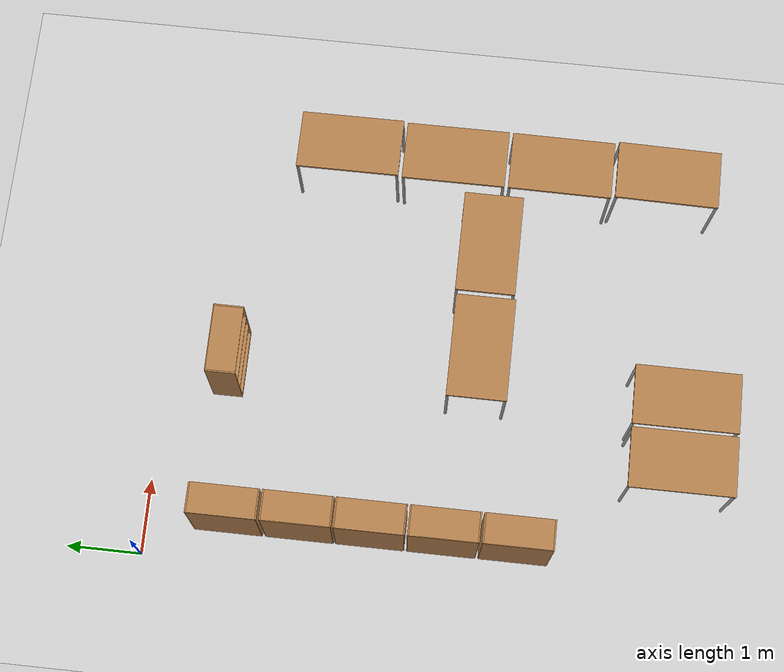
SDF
<sdf version="1.6">
 <world name="default">
  <model name="ground_plane">
   <static>1</static>
   <link name="link">
    <collision name="collision">
     <geometry><plane><normal>0 0 1</normal><size>100 100</size></plane></geometry>
     <surface><friction><ode><mu>100</mu><mu2>50</mu2></ode></friction></surface>
    </collision>
    <visual name="visual">
     <cast_shadows>0</cast_shadows>
     <geometry><plane><normal>0 0 1</normal><size>100 100</size></plane></geometry>
     <material>
      <script><uri>file://media/materials/scripts/gazebo.material</uri><name>Gazebo/Grey</name></script>
     </material>
    </visual>
   </link>
  </model>
  <model name="table_0_clone_0_clone_clone">
   <static>0</static>
   <link name="link">
    <collision name="surface">
     <pose>0 0 1 0 -0 0</pose>
     <geometry><box><size>1.5 0.8 0.03</size></box></geometry>
     <surface><friction><ode><mu>0.6</mu><mu2>0.6</mu2></ode></friction></surface>
    </collision>
    <visual name="visual1">
     <pose>0 0 1 0 -0 0</pose>
     <geometry><box><size>1.4 0.8 0.04</size></box></geometry>
     <material>
      <script><uri>file://media/materials/scripts/gazebo.material</uri><name>Gazebo/Wood</name></script>
     </material>
    </visual>
    <collision name="front_left_leg">
     <pose>0.68 0.38 0.5 0 -0 0</pose>
     <geometry><cylinder><radius>0.02</radius><length>1</length></cylinder></geometry>
    </collision>
    <visual name="front_left_leg">
     <pose>0.68 0.38 0.5 0 -0 0</pose>
     <geometry><cylinder><radius>0.02</radius><length>1</length></cylinder></geometry>
     <material>
      <script><uri>file://media/materials/scripts/gazebo.material</uri><name>Gazebo/Grey</name></script>
     </material>
    </visual>
    <collision name="front_right_leg">
     <pose>0.68 -0.38 0.5 0 -0 0</pose>
     <geometry><cylinder><radius>0.02</radius><length>1</length></cylinder></geometry>
    </collision>
    <visual name="front_right_leg">
     <pose>0.68 -0.38 0.5 0 -0 0</pose>
     <geometry><cylinder><radius>0.02</radius><length>1</length></cylinder></geometry>
     <material>
      <script><uri>file://media/materials/scripts/gazebo.material</uri><name>Gazebo/Grey</name></script>
     </material>
    </visual>
    <collision name="back_right_leg">
     <pose>-0.68 -0.38 0.5 0 -0 0</pose>
     <geometry><cylinder><radius>0.02</radius><length>1</length></cylinder></geometry>
    </collision>
    <visual name="back_right_leg">
     <pose>-0.68 -0.38 0.5 0 -0 0</pose>
     <geometry><cylinder><radius>0.02</radius><length>1</length></cylinder></geometry>
     <material>
      <script><uri>file://media/materials/scripts/gazebo.material</uri><name>Gazebo/Grey</name></script>
     </material>
    </visual>
    <collision name="back_left_leg">
     <pose>-0.68 0.38 0.5 0 -0 0</pose>
     <geometry><cylinder><radius>0.02</radius><length>1</length></cylinder></geometry>
    </collision>
    <visual name="back_left_leg">
     <pose>-0.68 0.38 0.5 0 -0 0</pose>
     <geometry><cylinder><radius>0.02</radius><length>1</length></cylinder></geometry>
     <material>
      <script><uri>file://media/materials/scripts/gazebo.material</uri><name>Gazebo/Grey</name></script>
     </material>
    </visual>
    <inertial>
     <inertia><ixx>1</ixx><ixy>0</ixy><ixz>0</ixz><iyy>1</iyy><iyz>0</iyz><izz>1</izz></inertia>
     <mass>1</mass>
    </inertial>
   </link>
   <pose>5.70429 -5.08192 -2.3e-05 0 7e-06 -1.57798</pose>
  </model>
  <model name="table_0_clone_0_clone_clone_0">
   <static>0</static>
   <link name="link">
    <collision name="surface">
     <pose>0 0 1 0 -0 0</pose>
     <geometry><box><size>1.5 0.8 0.03</size></box></geometry>
     <surface><friction><ode><mu>0.6</mu><mu2>0.6</mu2></ode></friction></surface>
    </collision>
    <visual name="visual1">
     <pose>0 0 1 0 -0 0</pose>
     <geometry><box><size>1.4 0.8 0.04</size></box></geometry>
     <material>
      <script><uri>file://media/materials/scripts/gazebo.material</uri><name>Gazebo/Wood</name></script>
     </material>
    </visual>
    <collision name="front_left_leg">
     <pose>0.68 0.38 0.5 0 -0 0</pose>
     <geometry><cylinder><radius>0.02</radius><length>1</length></cylinder></geometry>
    </collision>
    <visual name="front_left_leg">
     <pose>0.68 0.38 0.5 0 -0 0</pose>
     <geometry><cylinder><radius>0.02</radius><length>1</length></cylinder></geometry>
     <material>
      <script><uri>file://media/materials/scripts/gazebo.material</uri><name>Gazebo/Grey</name></script>
     </material>
    </visual>
    <collision name="front_right_leg">
     <pose>0.68 -0.38 0.5 0 -0 0</pose>
     <geometry><cylinder><radius>0.02</radius><length>1</length></cylinder></geometry>
    </collision>
    <visual name="front_right_leg">
     <pose>0.68 -0.38 0.5 0 -0 0</pose>
     <geometry><cylinder><radius>0.02</radius><length>1</length></cylinder></geometry>
     <material>
      <script><uri>file://media/materials/scripts/gazebo.material</uri><name>Gazebo/Grey</name></script>
     </material>
    </visual>
    <collision name="back_right_leg">
     <pose>-0.68 -0.38 0.5 0 -0 0</pose>
     <geometry><cylinder><radius>0.02</radius><length>1</length></cylinder></geometry>
    </collision>
    <visual name="back_right_leg">
     <pose>-0.68 -0.38 0.5 0 -0 0</pose>
     <geometry><cylinder><radius>0.02</radius><length>1</length></cylinder></geometry>
     <material>
      <script><uri>file://media/materials/scripts/gazebo.material</uri><name>Gazebo/Grey</name></script>
     </material>
    </visual>
    <collision name="back_left_leg">
     <pose>-0.68 0.38 0.5 0 -0 0</pose>
     <geometry><cylinder><radius>0.02</radius><length>1</length></cylinder></geometry>
    </collision>
    <visual name="back_left_leg">
     <pose>-0.68 0.38 0.5 0 -0 0</pose>
     <geometry><cylinder><radius>0.02</radius><length>1</length></cylinder></geometry>
     <material>
      <script><uri>file://media/materials/scripts/gazebo.material</uri><name>Gazebo/Grey</name></script>
     </material>
    </visual>
    <inertial>
     <inertia><ixx>1</ixx><ixy>0</ixy><ixz>0</ixz><iyy>1</iyy><iyz>0</iyz><izz>1</izz></inertia>
     <mass>1</mass>
    </inertial>
   </link>
   <pose>5.71044 -6.51123 0.0151 -2e-06 0.021572 -1.57798</pose>
  </model>
  <model name="table_0_clone_0_clone_clone_1">
   <static>0</static>
   <link name="link">
    <collision name="surface">
     <pose>0 0 1 0 -0 0</pose>
     <geometry><box><size>1.5 0.8 0.03</size></box></geometry>
     <surface><friction><ode><mu>0.6</mu><mu2>0.6</mu2></ode></friction></surface>
    </collision>
    <visual name="visual1">
     <pose>0 0 1 0 -0 0</pose>
     <geometry><box><size>1.4 0.8 0.04</size></box></geometry>
     <material>
      <script><uri>file://media/materials/scripts/gazebo.material</uri><name>Gazebo/Wood</name></script>
     </material>
    </visual>
    <collision name="front_left_leg">
     <pose>0.68 0.38 0.5 0 -0 0</pose>
     <geometry><cylinder><radius>0.02</radius><length>1</length></cylinder></geometry>
    </collision>
    <visual name="front_left_leg">
     <pose>0.68 0.38 0.5 0 -0 0</pose>
     <geometry><cylinder><radius>0.02</radius><length>1</length></cylinder></geometry>
     <material>
      <script><uri>file://media/materials/scripts/gazebo.material</uri><name>Gazebo/Grey</name></script>
     </material>
    </visual>
    <collision name="front_right_leg">
     <pose>0.68 -0.38 0.5 0 -0 0</pose>
     <geometry><cylinder><radius>0.02</radius><length>1</length></cylinder></geometry>
    </collision>
    <visual name="front_right_leg">
     <pose>0.68 -0.38 0.5 0 -0 0</pose>
     <geometry><cylinder><radius>0.02</radius><length>1</length></cylinder></geometry>
     <material>
      <script><uri>file://media/materials/scripts/gazebo.material</uri><name>Gazebo/Grey</name></script>
     </material>
    </visual>
    <collision name="back_right_leg">
     <pose>-0.68 -0.38 0.5 0 -0 0</pose>
     <geometry><cylinder><radius>0.02</radius><length>1</length></cylinder></geometry>
    </collision>
    <visual name="back_right_leg">
     <pose>-0.68 -0.38 0.5 0 -0 0</pose>
     <geometry><cylinder><radius>0.02</radius><length>1</length></cylinder></geometry>
     <material>
      <script><uri>file://media/materials/scripts/gazebo.material</uri><name>Gazebo/Grey</name></script>
     </material>
    </visual>
    <collision name="back_left_leg">
     <pose>-0.68 0.38 0.5 0 -0 0</pose>
     <geometry><cylinder><radius>0.02</radius><length>1</length></cylinder></geometry>
    </collision>
    <visual name="back_left_leg">
     <pose>-0.68 0.38 0.5 0 -0 0</pose>
     <geometry><cylinder><radius>0.02</radius><length>1</length></cylinder></geometry>
     <material>
      <script><uri>file://media/materials/scripts/gazebo.material</uri><name>Gazebo/Grey</name></script>
     </material>
    </visual>
    <inertial>
     <inertia><ixx>1</ixx><ixy>0</ixy><ixz>0</ixz><iyy>1</iyy><iyz>0</iyz><izz>1</izz></inertia>
     <mass>1</mass>
    </inertial>
   </link>
   <pose>2.60823 -6.96246 -3e-06 0 -4e-06 -1.57084</pose>
  </model>
  <model name="table_0_clone_0_clone_clone_2">
   <static>0</static>
   <link name="link">
    <collision name="surface">
     <pose>0 0 1 0 -0 0</pose>
     <geometry><box><size>1.5 0.8 0.03</size></box></geometry>
     <surface><friction><ode><mu>0.6</mu><mu2>0.6</mu2></ode></friction></surface>
    </collision>
    <visual name="visual1">
     <pose>0 0 1 0 -0 0</pose>
     <geometry><box><size>1.4 0.8 0.04</size></box></geometry>
     <material>
      <script><uri>file://media/materials/scripts/gazebo.material</uri><name>Gazebo/Wood</name></script>
     </material>
    </visual>
    <collision name="front_left_leg">
     <pose>0.68 0.38 0.5 0 -0 0</pose>
     <geometry><cylinder><radius>0.02</radius><length>1</length></cylinder></geometry>
    </collision>
    <visual name="front_left_leg">
     <pose>0.68 0.38 0.5 0 -0 0</pose>
     <geometry><cylinder><radius>0.02</radius><length>1</length></cylinder></geometry>
     <material>
      <script><uri>file://media/materials/scripts/gazebo.material</uri><name>Gazebo/Grey</name></script>
     </material>
    </visual>
    <collision name="front_right_leg">
     <pose>0.68 -0.38 0.5 0 -0 0</pose>
     <geometry><cylinder><radius>0.02</radius><length>1</length></cylinder></geometry>
    </collision>
    <visual name="front_right_leg">
     <pose>0.68 -0.38 0.5 0 -0 0</pose>
     <geometry><cylinder><radius>0.02</radius><length>1</length></cylinder></geometry>
     <material>
      <script><uri>file://media/materials/scripts/gazebo.material</uri><name>Gazebo/Grey</name></script>
     </material>
    </visual>
    <collision name="back_right_leg">
     <pose>-0.68 -0.38 0.5 0 -0 0</pose>
     <geometry><cylinder><radius>0.02</radius><length>1</length></cylinder></geometry>
    </collision>
    <visual name="back_right_leg">
     <pose>-0.68 -0.38 0.5 0 -0 0</pose>
     <geometry><cylinder><radius>0.02</radius><length>1</length></cylinder></geometry>
     <material>
      <script><uri>file://media/materials/scripts/gazebo.material</uri><name>Gazebo/Grey</name></script>
     </material>
    </visual>
    <collision name="back_left_leg">
     <pose>-0.68 0.38 0.5 0 -0 0</pose>
     <geometry><cylinder><radius>0.02</radius><length>1</length></cylinder></geometry>
    </collision>
    <visual name="back_left_leg">
     <pose>-0.68 0.38 0.5 0 -0 0</pose>
     <geometry><cylinder><radius>0.02</radius><length>1</length></cylinder></geometry>
     <material>
      <script><uri>file://media/materials/scripts/gazebo.material</uri><name>Gazebo/Grey</name></script>
     </material>
    </visual>
    <inertial>
     <inertia><ixx>1</ixx><ixy>0</ixy><ixz>0</ixz><iyy>1</iyy><iyz>0</iyz><izz>1</izz></inertia>
     <mass>1</mass>
    </inertial>
   </link>
   <pose>1.76358 -6.96121 -9e-06 0 0 -1.57001</pose>
  </model>
  <model name="bookshelf">
   <static>1</static>
   <link name="link">
    <inertial><mass>1</mass></inertial>
    <collision name="back">
     <pose>0 0.005 0.6 0 -0 0</pose>
     <geometry><box><size>0.9 0.01 1.2</size></box></geometry>
    </collision>
    <visual name="visual1">
     <pose>0 0.005 0.6 0 -0 0</pose>
     <geometry><box><size>0.9 0.01 1.2</size></box></geometry>
     <material>
      <script><uri>file://media/materials/scripts/gazebo.material</uri><name>Gazebo/Wood</name></script>
     </material>
    </visual>
    <collision name="left_side">
     <pose>0.45 -0.195 0.6 0 -0 0</pose>
     <geometry><box><size>0.02 0.4 1.2</size></box></geometry>
    </collision>
    <visual name="visual2">
     <pose>0.45 -0.195 0.6 0 -0 0</pose>
     <geometry><box><size>0.02 0.4 1.2</size></box></geometry>
     <material>
      <script><uri>file://media/materials/scripts/gazebo.material</uri><name>Gazebo/Wood</name></script>
     </material>
    </visual>
    <collision name="right_side">
     <pose>-0.45 -0.195 0.6 0 -0 0</pose>
     <geometry><box><size>0.02 0.4 1.2</size></box></geometry>
    </collision>
    <visual name="visual3">
     <pose>-0.45 -0.195 0.6 0 -0 0</pose>
     <geometry><box><size>0.02 0.4 1.2</size></box></geometry>
     <material>
      <script><uri>file://media/materials/scripts/gazebo.material</uri><name>Gazebo/Wood</name></script>
     </material>
    </visual>
    <collision name="bottom">
     <pose>0 -0.195 0.03 0 -0 0</pose>
     <geometry><box><size>0.88 0.4 0.06</size></box></geometry>
    </collision>
    <visual name="visual4">
     <pose>0 -0.195 0.03 0 -0 0</pose>
     <geometry><box><size>0.88 0.4 0.06</size></box></geometry>
     <material>
      <script><uri>file://media/materials/scripts/gazebo.material</uri><name>Gazebo/Wood</name></script>
     </material>
    </visual>
    <collision name="top">
     <pose>0 -0.195 1.19 0 -0 0</pose>
     <geometry><box><size>0.88 0.4 0.02</size></box></geometry>
    </collision>
    <visual name="visual5">
     <pose>0 -0.195 1.19 0 -0 0</pose>
     <geometry><box><size>0.88 0.4 0.02</size></box></geometry>
     <material>
      <script><uri>file://media/materials/scripts/gazebo.material</uri><name>Gazebo/Wood</name></script>
     </material>
    </visual>
    <collision name="low_shelf">
     <pose>0 -0.195 0.43 0 -0 0</pose>
     <geometry><box><size>0.88 0.4 0.02</size></box></geometry>
    </collision>
    <visual name="visual6">
     <pose>0 -0.195 0.43 0 -0 0</pose>
     <geometry><box><size>0.88 0.4 0.02</size></box></geometry>
     <material>
      <script><uri>file://media/materials/scripts/gazebo.material</uri><name>Gazebo/Wood</name></script>
     </material>
    </visual>
    <collision name="high_shelf">
     <pose>0 -0.195 0.8 0 -0 0</pose>
     <geometry><box><size>0.88 0.4 0.02</size></box></geometry>
    </collision>
    <visual name="visual7">
     <pose>0 -0.195 0.8 0 -0 0</pose>
     <geometry><box><size>0.88 0.4 0.02</size></box></geometry>
     <material>
      <script><uri>file://media/materials/scripts/gazebo.material</uri><name>Gazebo/Wood</name></script>
     </material>
    </visual>
   </link>
   <pose>0.408915 -1.12037 0 0 -0 1.56964</pose>
  </model>
  <model name="bookshelf_clone">
   <static>1</static>
   <link name="link">
    <inertial><mass>1</mass></inertial>
    <collision name="back">
     <pose>0 0.005 0.6 0 -0 0</pose>
     <geometry><box><size>0.9 0.01 1.2</size></box></geometry>
    </collision>
    <visual name="visual1">
     <pose>0 0.005 0.6 0 -0 0</pose>
     <geometry><box><size>0.9 0.01 1.2</size></box></geometry>
     <material>
      <script><uri>file://media/materials/scripts/gazebo.material</uri><name>Gazebo/Wood</name></script>
     </material>
    </visual>
    <collision name="left_side">
     <pose>0.45 -0.195 0.6 0 -0 0</pose>
     <geometry><box><size>0.02 0.4 1.2</size></box></geometry>
    </collision>
    <visual name="visual2">
     <pose>0.45 -0.195 0.6 0 -0 0</pose>
     <geometry><box><size>0.02 0.4 1.2</size></box></geometry>
     <material>
      <script><uri>file://media/materials/scripts/gazebo.material</uri><name>Gazebo/Wood</name></script>
     </material>
    </visual>
    <collision name="right_side">
     <pose>-0.45 -0.195 0.6 0 -0 0</pose>
     <geometry><box><size>0.02 0.4 1.2</size></box></geometry>
    </collision>
    <visual name="visual3">
     <pose>-0.45 -0.195 0.6 0 -0 0</pose>
     <geometry><box><size>0.02 0.4 1.2</size></box></geometry>
     <material>
      <script><uri>file://media/materials/scripts/gazebo.material</uri><name>Gazebo/Wood</name></script>
     </material>
    </visual>
    <collision name="bottom">
     <pose>0 -0.195 0.03 0 -0 0</pose>
     <geometry><box><size>0.88 0.4 0.06</size></box></geometry>
    </collision>
    <visual name="visual4">
     <pose>0 -0.195 0.03 0 -0 0</pose>
     <geometry><box><size>0.88 0.4 0.06</size></box></geometry>
     <material>
      <script><uri>file://media/materials/scripts/gazebo.material</uri><name>Gazebo/Wood</name></script>
     </material>
    </visual>
    <collision name="top">
     <pose>0 -0.195 1.19 0 -0 0</pose>
     <geometry><box><size>0.88 0.4 0.02</size></box></geometry>
    </collision>
    <visual name="visual5">
     <pose>0 -0.195 1.19 0 -0 0</pose>
     <geometry><box><size>0.88 0.4 0.02</size></box></geometry>
     <material>
      <script><uri>file://media/materials/scripts/gazebo.material</uri><name>Gazebo/Wood</name></script>
     </material>
    </visual>
    <collision name="low_shelf">
     <pose>0 -0.195 0.43 0 -0 0</pose>
     <geometry><box><size>0.88 0.4 0.02</size></box></geometry>
    </collision>
    <visual name="visual6">
     <pose>0 -0.195 0.43 0 -0 0</pose>
     <geometry><box><size>0.88 0.4 0.02</size></box></geometry>
     <material>
      <script><uri>file://media/materials/scripts/gazebo.material</uri><name>Gazebo/Wood</name></script>
     </material>
    </visual>
    <collision name="high_shelf">
     <pose>0 -0.195 0.8 0 -0 0</pose>
     <geometry><box><size>0.88 0.4 0.02</size></box></geometry>
    </collision>
    <visual name="visual7">
     <pose>0 -0.195 0.8 0 -0 0</pose>
     <geometry><box><size>0.88 0.4 0.02</size></box></geometry>
     <material>
      <script><uri>file://media/materials/scripts/gazebo.material</uri><name>Gazebo/Wood</name></script>
     </material>
    </visual>
   </link>
   <pose>0.408917 -2.07439 0 0 -0 1.56964</pose>
  </model>
  <model name="bookshelf_clone_0">
   <static>1</static>
   <link name="link">
    <inertial><mass>1</mass></inertial>
    <collision name="back">
     <pose>0 0.005 0.6 0 -0 0</pose>
     <geometry><box><size>0.9 0.01 1.2</size></box></geometry>
    </collision>
    <visual name="visual1">
     <pose>0 0.005 0.6 0 -0 0</pose>
     <geometry><box><size>0.9 0.01 1.2</size></box></geometry>
     <material>
      <script><uri>file://media/materials/scripts/gazebo.material</uri><name>Gazebo/Wood</name></script>
     </material>
    </visual>
    <collision name="left_side">
     <pose>0.45 -0.195 0.6 0 -0 0</pose>
     <geometry><box><size>0.02 0.4 1.2</size></box></geometry>
    </collision>
    <visual name="visual2">
     <pose>0.45 -0.195 0.6 0 -0 0</pose>
     <geometry><box><size>0.02 0.4 1.2</size></box></geometry>
     <material>
      <script><uri>file://media/materials/scripts/gazebo.material</uri><name>Gazebo/Wood</name></script>
     </material>
    </visual>
    <collision name="right_side">
     <pose>-0.45 -0.195 0.6 0 -0 0</pose>
     <geometry><box><size>0.02 0.4 1.2</size></box></geometry>
    </collision>
    <visual name="visual3">
     <pose>-0.45 -0.195 0.6 0 -0 0</pose>
     <geometry><box><size>0.02 0.4 1.2</size></box></geometry>
     <material>
      <script><uri>file://media/materials/scripts/gazebo.material</uri><name>Gazebo/Wood</name></script>
     </material>
    </visual>
    <collision name="bottom">
     <pose>0 -0.195 0.03 0 -0 0</pose>
     <geometry><box><size>0.88 0.4 0.06</size></box></geometry>
    </collision>
    <visual name="visual4">
     <pose>0 -0.195 0.03 0 -0 0</pose>
     <geometry><box><size>0.88 0.4 0.06</size></box></geometry>
     <material>
      <script><uri>file://media/materials/scripts/gazebo.material</uri><name>Gazebo/Wood</name></script>
     </material>
    </visual>
    <collision name="top">
     <pose>0 -0.195 1.19 0 -0 0</pose>
     <geometry><box><size>0.88 0.4 0.02</size></box></geometry>
    </collision>
    <visual name="visual5">
     <pose>0 -0.195 1.19 0 -0 0</pose>
     <geometry><box><size>0.88 0.4 0.02</size></box></geometry>
     <material>
      <script><uri>file://media/materials/scripts/gazebo.material</uri><name>Gazebo/Wood</name></script>
     </material>
    </visual>
    <collision name="low_shelf">
     <pose>0 -0.195 0.43 0 -0 0</pose>
     <geometry><box><size>0.88 0.4 0.02</size></box></geometry>
    </collision>
    <visual name="visual6">
     <pose>0 -0.195 0.43 0 -0 0</pose>
     <geometry><box><size>0.88 0.4 0.02</size></box></geometry>
     <material>
      <script><uri>file://media/materials/scripts/gazebo.material</uri><name>Gazebo/Wood</name></script>
     </material>
    </visual>
    <collision name="high_shelf">
     <pose>0 -0.195 0.8 0 -0 0</pose>
     <geometry><box><size>0.88 0.4 0.02</size></box></geometry>
    </collision>
    <visual name="visual7">
     <pose>0 -0.195 0.8 0 -0 0</pose>
     <geometry><box><size>0.88 0.4 0.02</size></box></geometry>
     <material>
      <script><uri>file://media/materials/scripts/gazebo.material</uri><name>Gazebo/Wood</name></script>
     </material>
    </visual>
   </link>
   <pose>0.408917 -3.01429 0 0 -0 1.56964</pose>
  </model>
  <model name="bookshelf_clone_1">
   <static>1</static>
   <link name="link">
    <inertial><mass>1</mass></inertial>
    <collision name="back">
     <pose>0 0.005 0.6 0 -0 0</pose>
     <geometry><box><size>0.9 0.01 1.2</size></box></geometry>
    </collision>
    <visual name="visual1">
     <pose>0 0.005 0.6 0 -0 0</pose>
     <geometry><box><size>0.9 0.01 1.2</size></box></geometry>
     <material>
      <script><uri>file://media/materials/scripts/gazebo.material</uri><name>Gazebo/Wood</name></script>
     </material>
    </visual>
    <collision name="left_side">
     <pose>0.45 -0.195 0.6 0 -0 0</pose>
     <geometry><box><size>0.02 0.4 1.2</size></box></geometry>
    </collision>
    <visual name="visual2">
     <pose>0.45 -0.195 0.6 0 -0 0</pose>
     <geometry><box><size>0.02 0.4 1.2</size></box></geometry>
     <material>
      <script><uri>file://media/materials/scripts/gazebo.material</uri><name>Gazebo/Wood</name></script>
     </material>
    </visual>
    <collision name="right_side">
     <pose>-0.45 -0.195 0.6 0 -0 0</pose>
     <geometry><box><size>0.02 0.4 1.2</size></box></geometry>
    </collision>
    <visual name="visual3">
     <pose>-0.45 -0.195 0.6 0 -0 0</pose>
     <geometry><box><size>0.02 0.4 1.2</size></box></geometry>
     <material>
      <script><uri>file://media/materials/scripts/gazebo.material</uri><name>Gazebo/Wood</name></script>
     </material>
    </visual>
    <collision name="bottom">
     <pose>0 -0.195 0.03 0 -0 0</pose>
     <geometry><box><size>0.88 0.4 0.06</size></box></geometry>
    </collision>
    <visual name="visual4">
     <pose>0 -0.195 0.03 0 -0 0</pose>
     <geometry><box><size>0.88 0.4 0.06</size></box></geometry>
     <material>
      <script><uri>file://media/materials/scripts/gazebo.material</uri><name>Gazebo/Wood</name></script>
     </material>
    </visual>
    <collision name="top">
     <pose>0 -0.195 1.19 0 -0 0</pose>
     <geometry><box><size>0.88 0.4 0.02</size></box></geometry>
    </collision>
    <visual name="visual5">
     <pose>0 -0.195 1.19 0 -0 0</pose>
     <geometry><box><size>0.88 0.4 0.02</size></box></geometry>
     <material>
      <script><uri>file://media/materials/scripts/gazebo.material</uri><name>Gazebo/Wood</name></script>
     </material>
    </visual>
    <collision name="low_shelf">
     <pose>0 -0.195 0.43 0 -0 0</pose>
     <geometry><box><size>0.88 0.4 0.02</size></box></geometry>
    </collision>
    <visual name="visual6">
     <pose>0 -0.195 0.43 0 -0 0</pose>
     <geometry><box><size>0.88 0.4 0.02</size></box></geometry>
     <material>
      <script><uri>file://media/materials/scripts/gazebo.material</uri><name>Gazebo/Wood</name></script>
     </material>
    </visual>
    <collision name="high_shelf">
     <pose>0 -0.195 0.8 0 -0 0</pose>
     <geometry><box><size>0.88 0.4 0.02</size></box></geometry>
    </collision>
    <visual name="visual7">
     <pose>0 -0.195 0.8 0 -0 0</pose>
     <geometry><box><size>0.88 0.4 0.02</size></box></geometry>
     <material>
      <script><uri>file://media/materials/scripts/gazebo.material</uri><name>Gazebo/Wood</name></script>
     </material>
    </visual>
   </link>
   <pose>0.408917 -3.96628 0 0 -0 1.56964</pose>
  </model>
  <model name="bookshelf_clone_2">
   <static>1</static>
   <link name="link">
    <inertial><mass>1</mass></inertial>
    <collision name="back">
     <pose>0 0.005 0.6 0 -0 0</pose>
     <geometry><box><size>0.9 0.01 1.2</size></box></geometry>
    </collision>
    <visual name="visual1">
     <pose>0 0.005 0.6 0 -0 0</pose>
     <geometry><box><size>0.9 0.01 1.2</size></box></geometry>
     <material>
      <script><uri>file://media/materials/scripts/gazebo.material</uri><name>Gazebo/Wood</name></script>
     </material>
    </visual>
    <collision name="left_side">
     <pose>0.45 -0.195 0.6 0 -0 0</pose>
     <geometry><box><size>0.02 0.4 1.2</size></box></geometry>
    </collision>
    <visual name="visual2">
     <pose>0.45 -0.195 0.6 0 -0 0</pose>
     <geometry><box><size>0.02 0.4 1.2</size></box></geometry>
     <material>
      <script><uri>file://media/materials/scripts/gazebo.material</uri><name>Gazebo/Wood</name></script>
     </material>
    </visual>
    <collision name="right_side">
     <pose>-0.45 -0.195 0.6 0 -0 0</pose>
     <geometry><box><size>0.02 0.4 1.2</size></box></geometry>
    </collision>
    <visual name="visual3">
     <pose>-0.45 -0.195 0.6 0 -0 0</pose>
     <geometry><box><size>0.02 0.4 1.2</size></box></geometry>
     <material>
      <script><uri>file://media/materials/scripts/gazebo.material</uri><name>Gazebo/Wood</name></script>
     </material>
    </visual>
    <collision name="bottom">
     <pose>0 -0.195 0.03 0 -0 0</pose>
     <geometry><box><size>0.88 0.4 0.06</size></box></geometry>
    </collision>
    <visual name="visual4">
     <pose>0 -0.195 0.03 0 -0 0</pose>
     <geometry><box><size>0.88 0.4 0.06</size></box></geometry>
     <material>
      <script><uri>file://media/materials/scripts/gazebo.material</uri><name>Gazebo/Wood</name></script>
     </material>
    </visual>
    <collision name="top">
     <pose>0 -0.195 1.19 0 -0 0</pose>
     <geometry><box><size>0.88 0.4 0.02</size></box></geometry>
    </collision>
    <visual name="visual5">
     <pose>0 -0.195 1.19 0 -0 0</pose>
     <geometry><box><size>0.88 0.4 0.02</size></box></geometry>
     <material>
      <script><uri>file://media/materials/scripts/gazebo.material</uri><name>Gazebo/Wood</name></script>
     </material>
    </visual>
    <collision name="low_shelf">
     <pose>0 -0.195 0.43 0 -0 0</pose>
     <geometry><box><size>0.88 0.4 0.02</size></box></geometry>
    </collision>
    <visual name="visual6">
     <pose>0 -0.195 0.43 0 -0 0</pose>
     <geometry><box><size>0.88 0.4 0.02</size></box></geometry>
     <material>
      <script><uri>file://media/materials/scripts/gazebo.material</uri><name>Gazebo/Wood</name></script>
     </material>
    </visual>
    <collision name="high_shelf">
     <pose>0 -0.195 0.8 0 -0 0</pose>
     <geometry><box><size>0.88 0.4 0.02</size></box></geometry>
    </collision>
    <visual name="visual7">
     <pose>0 -0.195 0.8 0 -0 0</pose>
     <geometry><box><size>0.88 0.4 0.02</size></box></geometry>
     <material>
      <script><uri>file://media/materials/scripts/gazebo.material</uri><name>Gazebo/Wood</name></script>
     </material>
    </visual>
   </link>
   <pose>0.408917 -4.91856 0 0 -0 1.56964</pose>
  </model>
  <model name="table_0_clone_0_clone_clone_clone">
   <static>0</static>
   <link name="link">
    <collision name="surface">
     <pose>0 0 1 0 -0 0</pose>
     <geometry><box><size>1.5 0.8 0.03</size></box></geometry>
     <surface><friction><ode><mu>0.6</mu><mu2>0.6</mu2></ode></friction></surface>
    </collision>
    <visual name="visual1">
     <pose>0 0 1 0 -0 0</pose>
     <geometry><box><size>1.4 0.8 0.04</size></box></geometry>
     <material>
      <script><uri>file://media/materials/scripts/gazebo.material</uri><name>Gazebo/Wood</name></script>
     </material>
    </visual>
    <collision name="front_left_leg">
     <pose>0.68 0.38 0.5 0 -0 0</pose>
     <geometry><cylinder><radius>0.02</radius><length>1</length></cylinder></geometry>
    </collision>
    <visual name="front_left_leg">
     <pose>0.68 0.38 0.5 0 -0 0</pose>
     <geometry><cylinder><radius>0.02</radius><length>1</length></cylinder></geometry>
     <material>
      <script><uri>file://media/materials/scripts/gazebo.material</uri><name>Gazebo/Grey</name></script>
     </material>
    </visual>
    <collision name="front_right_leg">
     <pose>0.68 -0.38 0.5 0 -0 0</pose>
     <geometry><cylinder><radius>0.02</radius><length>1</length></cylinder></geometry>
    </collision>
    <visual name="front_right_leg">
     <pose>0.68 -0.38 0.5 0 -0 0</pose>
     <geometry><cylinder><radius>0.02</radius><length>1</length></cylinder></geometry>
     <material>
      <script><uri>file://media/materials/scripts/gazebo.material</uri><name>Gazebo/Grey</name></script>
     </material>
    </visual>
    <collision name="back_right_leg">
     <pose>-0.68 -0.38 0.5 0 -0 0</pose>
     <geometry><cylinder><radius>0.02</radius><length>1</length></cylinder></geometry>
    </collision>
    <visual name="back_right_leg">
     <pose>-0.68 -0.38 0.5 0 -0 0</pose>
     <geometry><cylinder><radius>0.02</radius><length>1</length></cylinder></geometry>
     <material>
      <script><uri>file://media/materials/scripts/gazebo.material</uri><name>Gazebo/Grey</name></script>
     </material>
    </visual>
    <collision name="back_left_leg">
     <pose>-0.68 0.38 0.5 0 -0 0</pose>
     <geometry><cylinder><radius>0.02</radius><length>1</length></cylinder></geometry>
    </collision>
    <visual name="back_left_leg">
     <pose>-0.68 0.38 0.5 0 -0 0</pose>
     <geometry><cylinder><radius>0.02</radius><length>1</length></cylinder></geometry>
     <material>
      <script><uri>file://media/materials/scripts/gazebo.material</uri><name>Gazebo/Grey</name></script>
     </material>
    </visual>
    <inertial>
     <inertia><ixx>1</ixx><ixy>0</ixy><ixz>0</ixz><iyy>1</iyy><iyz>0</iyz><izz>1</izz></inertia>
     <mass>1</mass>
    </inertial>
   </link>
   <pose>5.70342 -3.65265 0.015102 0 -0.021576 -1.57798</pose>
  </model>
  <model name="table_0_clone_0_clone_clone_clone_0">
   <static>0</static>
   <link name="link">
    <collision name="surface">
     <pose>0 0 1 0 -0 0</pose>
     <geometry><box><size>1.5 0.8 0.03</size></box></geometry>
     <surface><friction><ode><mu>0.6</mu><mu2>0.6</mu2></ode></friction></surface>
    </collision>
    <visual name="visual1">
     <pose>0 0 1 0 -0 0</pose>
     <geometry><box><size>1.4 0.8 0.04</size></box></geometry>
     <material>
      <script><uri>file://media/materials/scripts/gazebo.material</uri><name>Gazebo/Wood</name></script>
     </material>
    </visual>
    <collision name="front_left_leg">
     <pose>0.68 0.38 0.5 0 -0 0</pose>
     <geometry><cylinder><radius>0.02</radius><length>1</length></cylinder></geometry>
    </collision>
    <visual name="front_left_leg">
     <pose>0.68 0.38 0.5 0 -0 0</pose>
     <geometry><cylinder><radius>0.02</radius><length>1</length></cylinder></geometry>
     <material>
      <script><uri>file://media/materials/scripts/gazebo.material</uri><name>Gazebo/Grey</name></script>
     </material>
    </visual>
    <collision name="front_right_leg">
     <pose>0.68 -0.38 0.5 0 -0 0</pose>
     <geometry><cylinder><radius>0.02</radius><length>1</length></cylinder></geometry>
    </collision>
    <visual name="front_right_leg">
     <pose>0.68 -0.38 0.5 0 -0 0</pose>
     <geometry><cylinder><radius>0.02</radius><length>1</length></cylinder></geometry>
     <material>
      <script><uri>file://media/materials/scripts/gazebo.material</uri><name>Gazebo/Grey</name></script>
     </material>
    </visual>
    <collision name="back_right_leg">
     <pose>-0.68 -0.38 0.5 0 -0 0</pose>
     <geometry><cylinder><radius>0.02</radius><length>1</length></cylinder></geometry>
    </collision>
    <visual name="back_right_leg">
     <pose>-0.68 -0.38 0.5 0 -0 0</pose>
     <geometry><cylinder><radius>0.02</radius><length>1</length></cylinder></geometry>
     <material>
      <script><uri>file://media/materials/scripts/gazebo.material</uri><name>Gazebo/Grey</name></script>
     </material>
    </visual>
    <collision name="back_left_leg">
     <pose>-0.68 0.38 0.5 0 -0 0</pose>
     <geometry><cylinder><radius>0.02</radius><length>1</length></cylinder></geometry>
    </collision>
    <visual name="back_left_leg">
     <pose>-0.68 0.38 0.5 0 -0 0</pose>
     <geometry><cylinder><radius>0.02</radius><length>1</length></cylinder></geometry>
     <material>
      <script><uri>file://media/materials/scripts/gazebo.material</uri><name>Gazebo/Grey</name></script>
     </material>
    </visual>
    <inertial>
     <inertia><ixx>1</ixx><ixy>0</ixy><ixz>0</ixz><iyy>1</iyy><iyz>0</iyz><izz>1</izz></inertia>
     <mass>1</mass>
    </inertial>
   </link>
   <pose>5.72156 -2.20152 0.014472 -4e-06 -0.020669 -1.57799</pose>
  </model>
  <model name="bookshelf_0_clone_1">
   <static>1</static>
   <link name="link">
    <inertial><mass>1</mass></inertial>
    <collision name="back">
     <pose>0 0.005 0.6 0 -0 0</pose>
     <geometry><box><size>0.9 0.01 1.2</size></box></geometry>
    </collision>
    <visual name="visual1">
     <pose>0 0.005 0.6 0 -0 0</pose>
     <geometry><box><size>0.9 0.01 1.2</size></box></geometry>
     <material>
      <script><uri>file://media/materials/scripts/gazebo.material</uri><name>Gazebo/Wood</name></script>
     </material>
    </visual>
    <collision name="left_side">
     <pose>0.45 -0.195 0.6 0 -0 0</pose>
     <geometry><box><size>0.02 0.4 1.2</size></box></geometry>
    </collision>
    <visual name="visual2">
     <pose>0.45 -0.195 0.6 0 -0 0</pose>
     <geometry><box><size>0.02 0.4 1.2</size></box></geometry>
     <material>
      <script><uri>file://media/materials/scripts/gazebo.material</uri><name>Gazebo/Wood</name></script>
     </material>
    </visual>
    <collision name="right_side">
     <pose>-0.45 -0.195 0.6 0 -0 0</pose>
     <geometry><box><size>0.02 0.4 1.2</size></box></geometry>
    </collision>
    <visual name="visual3">
     <pose>-0.45 -0.195 0.6 0 -0 0</pose>
     <geometry><box><size>0.02 0.4 1.2</size></box></geometry>
     <material>
      <script><uri>file://media/materials/scripts/gazebo.material</uri><name>Gazebo/Wood</name></script>
     </material>
    </visual>
    <collision name="bottom">
     <pose>0 -0.195 0.03 0 -0 0</pose>
     <geometry><box><size>0.88 0.4 0.06</size></box></geometry>
    </collision>
    <visual name="visual4">
     <pose>0 -0.195 0.03 0 -0 0</pose>
     <geometry><box><size>0.88 0.4 0.06</size></box></geometry>
     <material>
      <script><uri>file://media/materials/scripts/gazebo.material</uri><name>Gazebo/Wood</name></script>
     </material>
    </visual>
    <collision name="top">
     <pose>0 -0.195 1.19 0 -0 0</pose>
     <geometry><box><size>0.88 0.4 0.02</size></box></geometry>
    </collision>
    <visual name="visual5">
     <pose>0 -0.195 1.19 0 -0 0</pose>
     <geometry><box><size>0.88 0.4 0.02</size></box></geometry>
     <material>
      <script><uri>file://media/materials/scripts/gazebo.material</uri><name>Gazebo/Wood</name></script>
     </material>
    </visual>
    <collision name="low_shelf">
     <pose>0 -0.195 0.43 0 -0 0</pose>
     <geometry><box><size>0.88 0.4 0.02</size></box></geometry>
    </collision>
    <visual name="visual6">
     <pose>0 -0.195 0.43 0 -0 0</pose>
     <geometry><box><size>0.88 0.4 0.02</size></box></geometry>
     <material>
      <script><uri>file://media/materials/scripts/gazebo.material</uri><name>Gazebo/Wood</name></script>
     </material>
    </visual>
    <collision name="high_shelf">
     <pose>0 -0.195 0.8 0 -0 0</pose>
     <geometry><box><size>0.88 0.4 0.02</size></box></geometry>
    </collision>
    <visual name="visual7">
     <pose>0 -0.195 0.8 0 -0 0</pose>
     <geometry><box><size>0.88 0.4 0.02</size></box></geometry>
     <material>
      <script><uri>file://media/materials/scripts/gazebo.material</uri><name>Gazebo/Wood</name></script>
     </material>
    </visual>
   </link>
   <pose>2.7339 -0.667427 0 0 -0 0</pose>
  </model>
  <model name="table_clone_3">
   <static>0</static>
   <link name="link">
    <collision name="surface">
     <pose>0 0 1 0 -0 0</pose>
     <geometry><box><size>1.5 0.8 0.03</size></box></geometry>
     <surface><friction><ode><mu>0.6</mu><mu2>0.6</mu2></ode></friction></surface>
    </collision>
    <visual name="visual1">
     <pose>0 0 1 0 -0 0</pose>
     <geometry><box><size>1.4 0.8 0.04</size></box></geometry>
     <material>
      <script><uri>file://media/materials/scripts/gazebo.material</uri><name>Gazebo/Wood</name></script>
     </material>
    </visual>
    <collision name="front_left_leg">
     <pose>0.68 0.38 0.5 0 -0 0</pose>
     <geometry><cylinder><radius>0.02</radius><length>1</length></cylinder></geometry>
    </collision>
    <visual name="front_left_leg">
     <pose>0.68 0.38 0.5 0 -0 0</pose>
     <geometry><cylinder><radius>0.02</radius><length>1</length></cylinder></geometry>
     <material>
      <script><uri>file://media/materials/scripts/gazebo.material</uri><name>Gazebo/Grey</name></script>
     </material>
    </visual>
    <collision name="front_right_leg">
     <pose>0.68 -0.38 0.5 0 -0 0</pose>
     <geometry><cylinder><radius>0.02</radius><length>1</length></cylinder></geometry>
    </collision>
    <visual name="front_right_leg">
     <pose>0.68 -0.38 0.5 0 -0 0</pose>
     <geometry><cylinder><radius>0.02</radius><length>1</length></cylinder></geometry>
     <material>
      <script><uri>file://media/materials/scripts/gazebo.material</uri><name>Gazebo/Grey</name></script>
     </material>
    </visual>
    <collision name="back_right_leg">
     <pose>-0.68 -0.38 0.5 0 -0 0</pose>
     <geometry><cylinder><radius>0.02</radius><length>1</length></cylinder></geometry>
    </collision>
    <visual name="back_right_leg">
     <pose>-0.68 -0.38 0.5 0 -0 0</pose>
     <geometry><cylinder><radius>0.02</radius><length>1</length></cylinder></geometry>
     <material>
      <script><uri>file://media/materials/scripts/gazebo.material</uri><name>Gazebo/Grey</name></script>
     </material>
    </visual>
    <collision name="back_left_leg">
     <pose>-0.68 0.38 0.5 0 -0 0</pose>
     <geometry><cylinder><radius>0.02</radius><length>1</length></cylinder></geometry>
    </collision>
    <visual name="back_left_leg">
     <pose>-0.68 0.38 0.5 0 -0 0</pose>
     <geometry><cylinder><radius>0.02</radius><length>1</length></cylinder></geometry>
     <material>
      <script><uri>file://media/materials/scripts/gazebo.material</uri><name>Gazebo/Grey</name></script>
     </material>
    </visual>
    <inertial>
     <inertia><ixx>1</ixx><ixy>0</ixy><ixz>0</ixz><iyy>1</iyy><iyz>0</iyz><izz>1</izz></inertia>
     <mass>1</mass>
    </inertial>
   </link>
   <pose>4.45541 -4.20394 0.015108 0 0.021585 -0.003163</pose>
  </model>
  <model name="table_clone_4">
   <static>0</static>
   <link name="link">
    <collision name="surface">
     <pose>0 0 1 0 -0 0</pose>
     <geometry><box><size>1.5 0.8 0.03</size></box></geometry>
     <surface><friction><ode><mu>0.6</mu><mu2>0.6</mu2></ode></friction></surface>
    </collision>
    <visual name="visual1">
     <pose>0 0 1 0 -0 0</pose>
     <geometry><box><size>1.4 0.8 0.04</size></box></geometry>
     <material>
      <script><uri>file://media/materials/scripts/gazebo.material</uri><name>Gazebo/Wood</name></script>
     </material>
    </visual>
    <collision name="front_left_leg">
     <pose>0.68 0.38 0.5 0 -0 0</pose>
     <geometry><cylinder><radius>0.02</radius><length>1</length></cylinder></geometry>
    </collision>
    <visual name="front_left_leg">
     <pose>0.68 0.38 0.5 0 -0 0</pose>
     <geometry><cylinder><radius>0.02</radius><length>1</length></cylinder></geometry>
     <material>
      <script><uri>file://media/materials/scripts/gazebo.material</uri><name>Gazebo/Grey</name></script>
     </material>
    </visual>
    <collision name="front_right_leg">
     <pose>0.68 -0.38 0.5 0 -0 0</pose>
     <geometry><cylinder><radius>0.02</radius><length>1</length></cylinder></geometry>
    </collision>
    <visual name="front_right_leg">
     <pose>0.68 -0.38 0.5 0 -0 0</pose>
     <geometry><cylinder><radius>0.02</radius><length>1</length></cylinder></geometry>
     <material>
      <script><uri>file://media/materials/scripts/gazebo.material</uri><name>Gazebo/Grey</name></script>
     </material>
    </visual>
    <collision name="back_right_leg">
     <pose>-0.68 -0.38 0.5 0 -0 0</pose>
     <geometry><cylinder><radius>0.02</radius><length>1</length></cylinder></geometry>
    </collision>
    <visual name="back_right_leg">
     <pose>-0.68 -0.38 0.5 0 -0 0</pose>
     <geometry><cylinder><radius>0.02</radius><length>1</length></cylinder></geometry>
     <material>
      <script><uri>file://media/materials/scripts/gazebo.material</uri><name>Gazebo/Grey</name></script>
     </material>
    </visual>
    <collision name="back_left_leg">
     <pose>-0.68 0.38 0.5 0 -0 0</pose>
     <geometry><cylinder><radius>0.02</radius><length>1</length></cylinder></geometry>
    </collision>
    <visual name="back_left_leg">
     <pose>-0.68 0.38 0.5 0 -0 0</pose>
     <geometry><cylinder><radius>0.02</radius><length>1</length></cylinder></geometry>
     <material>
      <script><uri>file://media/materials/scripts/gazebo.material</uri><name>Gazebo/Grey</name></script>
     </material>
    </visual>
    <inertial>
     <inertia><ixx>1</ixx><ixy>0</ixy><ixz>0</ixz><iyy>1</iyy><iyz>0</iyz><izz>1</izz></inertia>
     <mass>1</mass>
    </inertial>
   </link>
   <pose>3.02616 -4.22099 0 0 0 -0.003251</pose>
  </model>
 </world>
</sdf>
